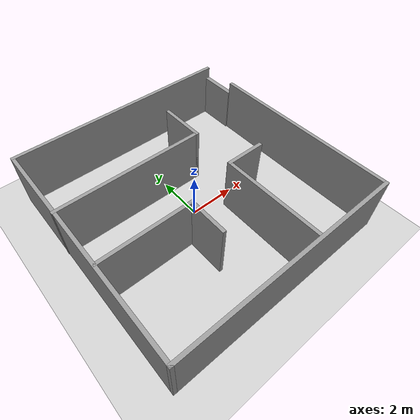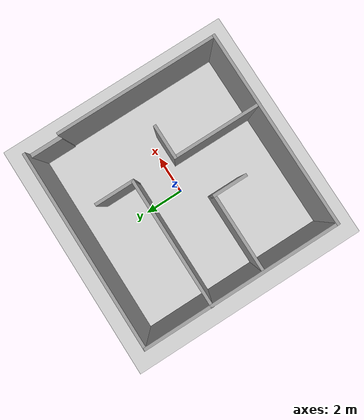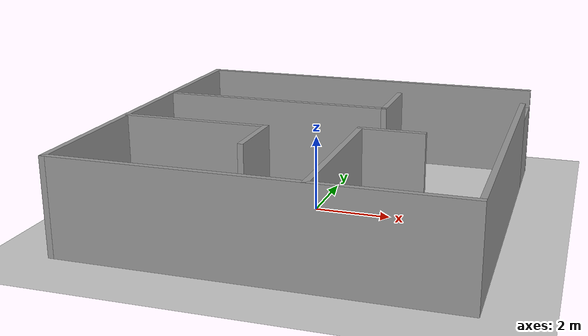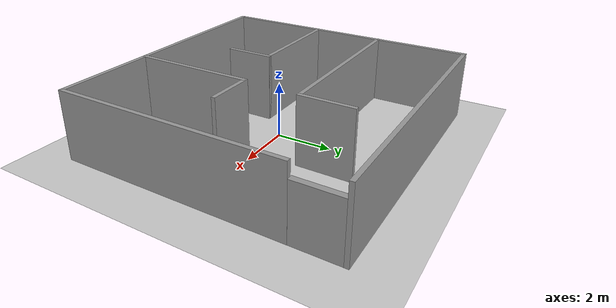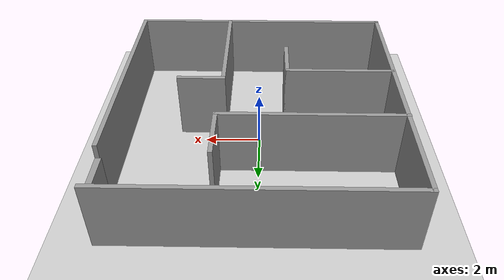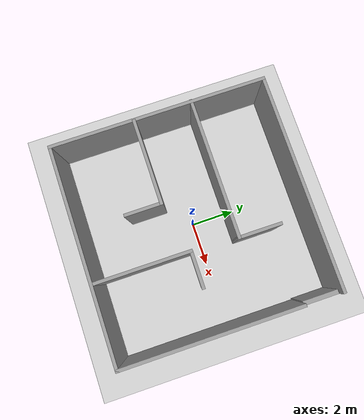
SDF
<sdf version="1.7">
 <world name="default">
  <light name="sun" type="directional">
   <pose>0 0 10 0 -0 0</pose>
   <diffuse>0.8 0.8 0.8 1</diffuse>
   <specular>0.2 0.2 0.2 1</specular>
   <attenuation>
    <range>1000</range>
    <constant>0.9</constant>
    <linear>0.01</linear>
    <quadratic>0.001</quadratic>
   </attenuation>
   <direction>-0.5 0.1 -0.9</direction>
   <spot><inner_angle>0</inner_angle><outer_angle>0</outer_angle><falloff>0</falloff></spot>
  </light>
  <model name="ground_plane">
   <static>1</static>
   <link name="link">
    <collision name="collision">
     <geometry><plane><normal>0 0 1</normal><size>100 100</size></plane></geometry>
     <surface>
      <contact><collide_bitmask>65535</collide_bitmask></contact>
      <friction><ode><mu>100</mu><mu2>50</mu2></ode></friction>
     </surface>
    </collision>
    <visual name="visual">
     <cast_shadows>0</cast_shadows>
     <geometry><plane><normal>0 0 1</normal><size>100 100</size></plane></geometry>
     <material>
      <script><uri>file://media/materials/scripts/gazebo.material</uri><name>Gazebo/Grey</name></script>
     </material>
    </visual>
   </link>
  </model>
  <gravity>0 0 -9.8</gravity>
  <magnetic_field>6e-06 2.3e-05 -4.2e-05</magnetic_field>
  <atmosphere type="adiabatic"/>
  <physics type="ode">
   <max_step_size>0.001</max_step_size>
   <real_time_factor>1</real_time_factor>
   <real_time_update_rate>1000</real_time_update_rate>
  </physics>
  <scene><ambient>0.4 0.4 0.4 1</ambient><background>0.7 0.7 0.7 1</background><shadows>1</shadows></scene>
  <spherical_coordinates>
   <surface_model>EARTH_WGS84</surface_model>
   <latitude_deg>0</latitude_deg>
   <longitude_deg>0</longitude_deg>
   <elevation>0</elevation>
   <heading_deg>0</heading_deg>
  </spherical_coordinates>
  <model name="simple_maze">
   <pose>0.006432 0.022174 0 0 -0 0</pose>
   <link name="Door_1">
    <collision name="Door_1_Collision">
     <geometry><box><size>1.6084 0.2 2</size></box></geometry>
     <pose>0 0 1 0 -0 0</pose>
    </collision>
    <visual name="Door_1_Visual">
     <pose>0 0 1 0 -0 0</pose>
     <geometry><box><size>1.6084 0.2 2</size></box></geometry>
     <material>
      <script><uri>file://media/materials/scripts/gazebo.material</uri><name>Gazebo/Grey</name></script>
     </material>
    </visual>
    <pose>4.90763 4.04933 0 0 -0 1.5714</pose>
   </link>
   <link name="Wall_0">
    <collision name="Wall_0_Collision">
     <geometry><box><size>10 0.15 2.5</size></box></geometry>
     <pose>0 0 1.25 0 -0 0</pose>
    </collision>
    <visual name="Wall_0_Visual">
     <pose>0 0 1.25 0 -0 0</pose>
     <geometry><box><size>10 0.15 2.5</size></box></geometry>
     <material>
      <script><uri>file://media/materials/scripts/gazebo.material</uri><name>Gazebo/Grey</name></script>
      <ambient>1 1 1 1</ambient>
     </material>
     <meta><layer>0</layer></meta>
    </visual>
    <pose>-4.91575 0 0 0 -0 1.5708</pose>
   </link>
   <link name="Wall_10">
    <collision name="Wall_10_Collision">
     <geometry><box><size>4.5 0.15 2.5</size></box></geometry>
     <pose>0 0 1.25 0 -0 0</pose>
    </collision>
    <visual name="Wall_10_Visual">
     <pose>0 0 1.25 0 -0 0</pose>
     <geometry><box><size>4.5 0.15 2.5</size></box></geometry>
     <material>
      <script><uri>file://media/materials/scripts/gazebo.material</uri><name>Gazebo/Grey</name></script>
      <ambient>1 1 1 1</ambient>
     </material>
     <meta><layer>0</layer></meta>
    </visual>
    <pose>1.30151 -2.72399 0 0 -0 1.5708</pose>
   </link>
   <link name="Wall_2">
    <collision name="Wall_2_Collision">
     <geometry><box><size>10 0.15 2.5</size></box></geometry>
     <pose>0 0 1.25 0 -0 0</pose>
    </collision>
    <visual name="Wall_2_Visual">
     <pose>0 0 1.25 0 -0 0</pose>
     <geometry><box><size>10 0.15 2.5</size></box></geometry>
     <material>
      <script><uri>file://media/materials/scripts/gazebo.material</uri><name>Gazebo/Grey</name></script>
      <ambient>1 1 1 1</ambient>
     </material>
     <meta><layer>0</layer></meta>
    </visual>
    <pose>0.009245 -4.925 0 0 -0 3.14159</pose>
   </link>
   <link name="Wall_31">
    <collision name="Wall_31_Collision">
     <geometry><box><size>1.75 0.15 2.5</size></box></geometry>
     <pose>0 0 1.25 0 -0 0</pose>
    </collision>
    <visual name="Wall_31_Visual">
     <pose>0 0 1.25 0 -0 0</pose>
     <geometry><box><size>1.75 0.15 2.5</size></box></geometry>
     <material>
      <script><uri>file://media/materials/scripts/gazebo.material</uri><name>Gazebo/Grey</name></script>
      <ambient>1 1 1 1</ambient>
     </material>
     <meta><layer>0</layer></meta>
    </visual>
    <pose>-1.02019 -1.8979 0 0 -0 -1.5708</pose>
   </link>
   <link name="Wall_33">
    <collision name="Wall_33_Collision">
     <geometry><box><size>6.5 0.15 2.5</size></box></geometry>
     <pose>0 0 1.25 0 -0 0</pose>
    </collision>
    <visual name="Wall_33_Visual">
     <pose>0 0 1.25 0 -0 0</pose>
     <geometry><box><size>6.5 0.15 2.5</size></box></geometry>
     <material>
      <script><uri>file://media/materials/scripts/gazebo.material</uri><name>Gazebo/Grey</name></script>
      <ambient>1 1 1 1</ambient>
     </material>
     <meta><layer>0</layer></meta>
    </visual>
    <pose>-1.75924 1.55908 0 0 -0 0</pose>
   </link>
   <link name="Wall_34">
    <collision name="Wall_34_Collision">
     <geometry><box><size>2 0.15 2.5</size></box></geometry>
     <pose>0 0 1.25 0 -0 0</pose>
    </collision>
    <visual name="Wall_34_Visual">
     <pose>0 0 1.25 0 -0 0</pose>
     <geometry><box><size>2 0.15 2.5</size></box></geometry>
     <material>
      <script><uri>file://media/materials/scripts/gazebo.material</uri><name>Gazebo/Grey</name></script>
      <ambient>1 1 1 1</ambient>
     </material>
     <meta><layer>0</layer></meta>
    </visual>
    <pose>1.41576 2.48408 0 0 -0 1.5708</pose>
   </link>
   <link name="Wall_36">
    <collision name="Wall_36_Collision">
     <geometry><box><size>1.75 0.15 2.5</size></box></geometry>
     <pose>0 0 1.25 0 -0 0</pose>
    </collision>
    <visual name="Wall_36_Visual">
     <pose>0 0 1.25 0 -0 0</pose>
     <geometry><box><size>1.75 0.15 2.5</size></box></geometry>
     <material>
      <script><uri>file://media/materials/scripts/gazebo.material</uri><name>Gazebo/Grey</name></script>
      <ambient>1 1 1 1</ambient>
     </material>
     <meta><layer>0</layer></meta>
    </visual>
    <pose>2.10151 -0.548988 0 0 -0 0</pose>
   </link>
   <link name="Wall_38">
    <collision name="Wall_38_Collision">
     <geometry><box><size>8.25 0.15 2.5</size></box></geometry>
     <pose>0 0 1.25 0 -0 0</pose>
    </collision>
    <visual name="Wall_38_Visual">
     <pose>0 0 1.25 0 -0 0</pose>
     <geometry><box><size>8.25 0.15 2.5</size></box></geometry>
     <material>
      <script><uri>file://media/materials/scripts/gazebo.material</uri><name>Gazebo/Grey</name></script>
      <ambient>1 1 1 1</ambient>
     </material>
     <meta><layer>0</layer></meta>
    </visual>
    <pose>4.93424 -0.875 0 0 -0 1.5708</pose>
   </link>
   <link name="Wall_5">
    <collision name="Wall_5_Collision">
     <geometry><box><size>10 0.15 2.5</size></box></geometry>
     <pose>0 0 1.25 0 -0 0</pose>
    </collision>
    <visual name="Wall_5_Visual">
     <pose>0 0 1.25 0 -0 0</pose>
     <geometry><box><size>10 0.15 2.5</size></box></geometry>
     <material>
      <script><uri>file://media/materials/scripts/gazebo.material</uri><name>Gazebo/Grey</name></script>
      <ambient>1 1 1 1</ambient>
     </material>
     <meta><layer>0</layer></meta>
    </visual>
    <pose>0.009245 4.925 0 0 -0 3.14159</pose>
   </link>
   <link name="Wall_7">
    <collision name="Wall_7_Collision">
     <geometry><box><size>4 0.15 2.5</size></box></geometry>
     <pose>0 0 1.25 0 -0 0</pose>
    </collision>
    <visual name="Wall_7_Visual">
     <pose>0 0 1.25 0 -0 0</pose>
     <geometry><box><size>4 0.15 2.5</size></box></geometry>
     <material>
      <script><uri>file://media/materials/scripts/gazebo.material</uri><name>Gazebo/Grey</name></script>
      <ambient>1 1 1 1</ambient>
     </material>
     <meta><layer>0</layer></meta>
    </visual>
    <pose>-2.94519 -1.0979 0 0 -0 0</pose>
   </link>
   <static>1</static>
  </model>
 </world>
</sdf>
